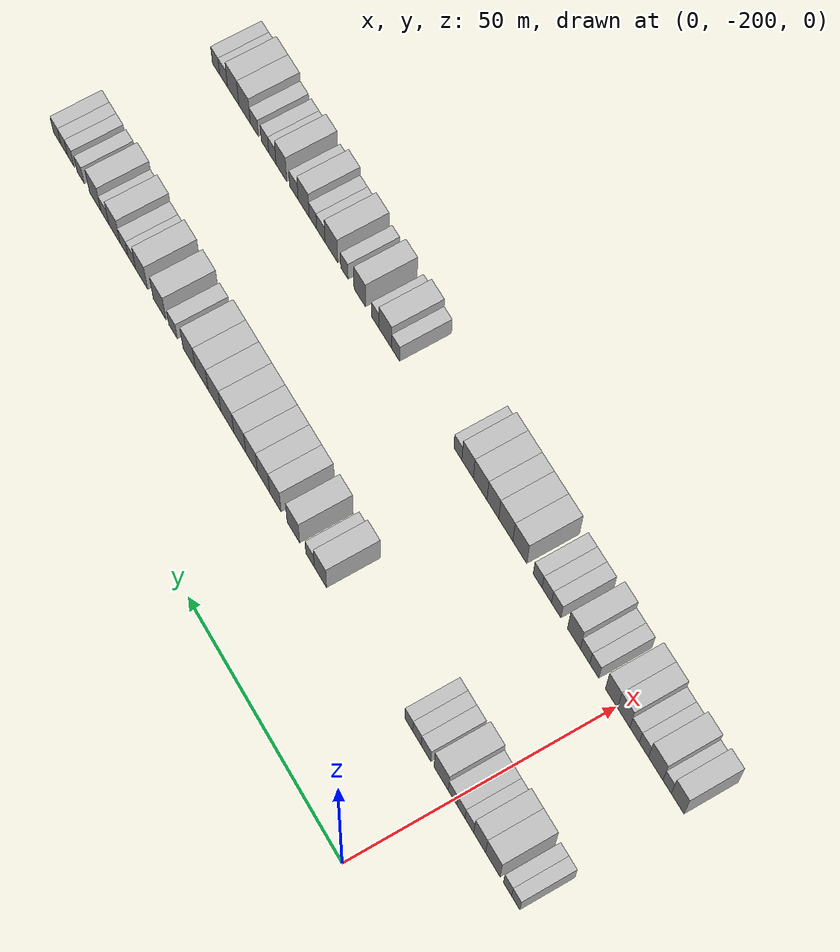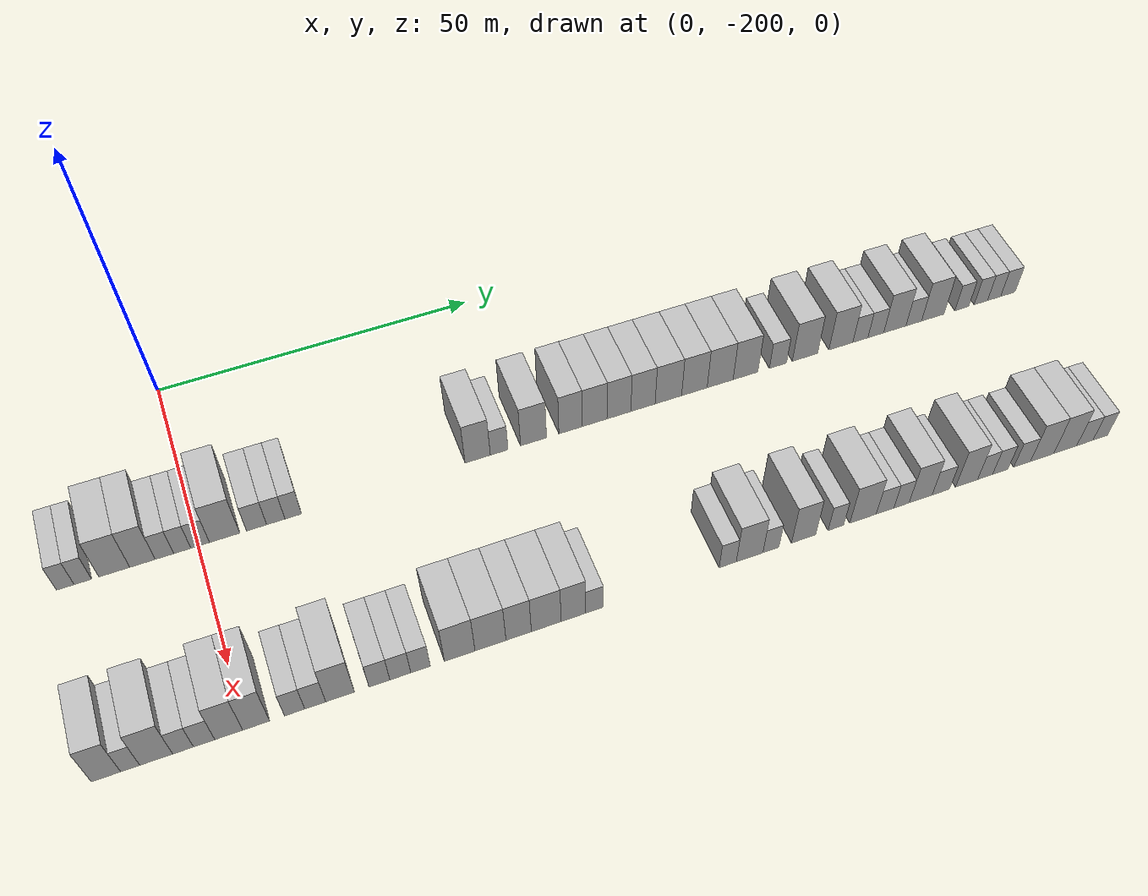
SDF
<sdf version="1.6">
 <world name="default">
  <model name="building_1">
   <static>1</static>
   <pose>25.0000 -218.7661 0 0.000000 0.000000 0.000000</pose>
   <link name="link">
    <pose>0 0 3.00 0 0 0</pose>
    <collision name="collision"><geometry><box><size>10.0000 2.4679 6.0000</size></box></geometry></collision>
    <visual name="visual">
     <cast_shadows>0</cast_shadows>
     <geometry><box><size>10.0000 2.4679 6.0000</size></box></geometry>
     <material>
      <script>
       <uri>model://HANNAS_wall/materials/scripts</uri>
       <uri>model://HANNAS_wall/materials/textures</uri>
       <name>vrc/HANNAS_wall</name>
      </script>
     </material>
    </visual>
   </link>
  </model>
  <model name="building_2">
   <static>1</static>
   <pose>25.0000 -216.3126 0 0.000000 0.000000 0.000000</pose>
   <link name="link">
    <pose>0 0 3.00 0 0 0</pose>
    <collision name="collision"><geometry><box><size>10.0000 2.4391 6.0000</size></box></geometry></collision>
    <visual name="visual">
     <cast_shadows>0</cast_shadows>
     <geometry><box><size>10.0000 2.4391 6.0000</size></box></geometry>
     <material>
      <script>
       <uri>model://HANNAS_wall/materials/scripts</uri>
       <uri>model://HANNAS_wall/materials/textures</uri>
       <name>vrc/HANNAS_wall</name>
      </script>
     </material>
    </visual>
   </link>
  </model>
  <model name="building_3">
   <static>1</static>
   <pose>25.0000 -211.9089 0 0.000000 0.000000 0.000000</pose>
   <link name="link">
    <pose>0 0 4.50 0 0 0</pose>
    <collision name="collision"><geometry><box><size>10.0000 4.3683 9.0000</size></box></geometry></collision>
    <visual name="visual">
     <cast_shadows>0</cast_shadows>
     <geometry><box><size>10.0000 4.3683 9.0000</size></box></geometry>
     <material>
      <script>
       <uri>model://HANNAS_wall/materials/scripts</uri>
       <uri>model://HANNAS_wall/materials/textures</uri>
       <name>vrc/HANNAS_wall</name>
      </script>
     </material>
    </visual>
   </link>
  </model>
  <model name="building_4">
   <static>1</static>
   <pose>25.0000 -207.9164 0 0.000000 0.000000 0.000000</pose>
   <link name="link">
    <pose>0 0 4.50 0 0 0</pose>
    <collision name="collision"><geometry><box><size>10.0000 3.6167 9.0000</size></box></geometry></collision>
    <visual name="visual">
     <cast_shadows>0</cast_shadows>
     <geometry><box><size>10.0000 3.6167 9.0000</size></box></geometry>
     <material>
      <script>
       <uri>model://HANNAS_wall/materials/scripts</uri>
       <uri>model://HANNAS_wall/materials/textures</uri>
       <name>vrc/HANNAS_wall</name>
      </script>
     </material>
    </visual>
   </link>
  </model>
  <model name="building_5">
   <static>1</static>
   <pose>25.0000 -204.7812 0 0.000000 0.000000 0.000000</pose>
   <link name="link">
    <pose>0 0 3.00 0 0 0</pose>
    <collision name="collision"><geometry><box><size>10.0000 2.6537 6.0000</size></box></geometry></collision>
    <visual name="visual">
     <cast_shadows>0</cast_shadows>
     <geometry><box><size>10.0000 2.6537 6.0000</size></box></geometry>
     <material>
      <script>
       <uri>model://HANNAS_wall/materials/scripts</uri>
       <uri>model://HANNAS_wall/materials/textures</uri>
       <name>vrc/HANNAS_wall</name>
      </script>
     </material>
    </visual>
   </link>
  </model>
  <model name="building_6">
   <static>1</static>
   <pose>25.0000 -202.2221 0 0.000000 0.000000 0.000000</pose>
   <link name="link">
    <pose>0 0 3.00 0 0 0</pose>
    <collision name="collision"><geometry><box><size>10.0000 2.4645 6.0000</size></box></geometry></collision>
    <visual name="visual">
     <cast_shadows>0</cast_shadows>
     <geometry><box><size>10.0000 2.4645 6.0000</size></box></geometry>
     <material>
      <script>
       <uri>model://HANNAS_wall/materials/scripts</uri>
       <uri>model://HANNAS_wall/materials/textures</uri>
       <name>vrc/HANNAS_wall</name>
      </script>
     </material>
    </visual>
   </link>
  </model>
  <model name="building_7">
   <static>1</static>
   <pose>25.0000 -199.6462 0 0.000000 0.000000 0.000000</pose>
   <link name="link">
    <pose>0 0 3.00 0 0 0</pose>
    <collision name="collision"><geometry><box><size>10.0000 2.6873 6.0000</size></box></geometry></collision>
    <visual name="visual">
     <cast_shadows>0</cast_shadows>
     <geometry><box><size>10.0000 2.6873 6.0000</size></box></geometry>
     <material>
      <script>
       <uri>model://HANNAS_wall/materials/scripts</uri>
       <uri>model://HANNAS_wall/materials/textures</uri>
       <name>vrc/HANNAS_wall</name>
      </script>
     </material>
    </visual>
   </link>
  </model>
  <model name="building_8">
   <static>1</static>
   <pose>25.0000 -196.1025 0 0.000000 0.000000 0.000000</pose>
   <link name="link">
    <pose>0 0 4.50 0 0 0</pose>
    <collision name="collision"><geometry><box><size>10.0000 4.4001 9.0000</size></box></geometry></collision>
    <visual name="visual">
     <cast_shadows>0</cast_shadows>
     <geometry><box><size>10.0000 4.4001 9.0000</size></box></geometry>
     <material>
      <script>
       <uri>model://HANNAS_wall/materials/scripts</uri>
       <uri>model://HANNAS_wall/materials/textures</uri>
       <name>vrc/HANNAS_wall</name>
      </script>
     </material>
    </visual>
   </link>
  </model>
  <model name="building_9">
   <static>1</static>
   <pose>25.0000 -191.4242 0 0.000000 0.000000 0.000000</pose>
   <link name="link">
    <pose>0 0 3.00 0 0 0</pose>
    <collision name="collision"><geometry><box><size>10.0000 2.9565 6.0000</size></box></geometry></collision>
    <visual name="visual">
     <cast_shadows>0</cast_shadows>
     <geometry><box><size>10.0000 2.9565 6.0000</size></box></geometry>
     <material>
      <script>
       <uri>model://HANNAS_wall/materials/scripts</uri>
       <uri>model://HANNAS_wall/materials/textures</uri>
       <name>vrc/HANNAS_wall</name>
      </script>
     </material>
    </visual>
   </link>
  </model>
  <model name="building_10">
   <static>1</static>
   <pose>25.0000 -188.5970 0 0.000000 0.000000 0.000000</pose>
   <link name="link">
    <pose>0 0 3.00 0 0 0</pose>
    <collision name="collision"><geometry><box><size>10.0000 2.6980 6.0000</size></box></geometry></collision>
    <visual name="visual">
     <cast_shadows>0</cast_shadows>
     <geometry><box><size>10.0000 2.6980 6.0000</size></box></geometry>
     <material>
      <script>
       <uri>model://HANNAS_wall/materials/scripts</uri>
       <uri>model://HANNAS_wall/materials/textures</uri>
       <name>vrc/HANNAS_wall</name>
      </script>
     </material>
    </visual>
   </link>
  </model>
  <model name="building_11">
   <static>1</static>
   <pose>25.0000 -186.0118 0 0.000000 0.000000 0.000000</pose>
   <link name="link">
    <pose>0 0 3.00 0 0 0</pose>
    <collision name="collision"><geometry><box><size>10.0000 2.4724 6.0000</size></box></geometry></collision>
    <visual name="visual">
     <cast_shadows>0</cast_shadows>
     <geometry><box><size>10.0000 2.4724 6.0000</size></box></geometry>
     <material>
      <script>
       <uri>model://HANNAS_wall/materials/scripts</uri>
       <uri>model://HANNAS_wall/materials/textures</uri>
       <name>vrc/HANNAS_wall</name>
      </script>
     </material>
    </visual>
   </link>
  </model>
  <model name="building_12">
   <static>1</static>
   <pose>25.0000 -157.7931 0 0.000000 0.000000 0.000000</pose>
   <link name="link">
    <pose>0 0 4.50 0 0 0</pose>
    <collision name="collision"><geometry><box><size>10.0000 3.9883 9.0000</size></box></geometry></collision>
    <visual name="visual">
     <cast_shadows>0</cast_shadows>
     <geometry><box><size>10.0000 3.9883 9.0000</size></box></geometry>
     <material>
      <script>
       <uri>model://HANNAS_wall/materials/scripts</uri>
       <uri>model://HANNAS_wall/materials/textures</uri>
       <name>vrc/HANNAS_wall</name>
      </script>
     </material>
    </visual>
   </link>
  </model>
  <model name="building_13">
   <static>1</static>
   <pose>25.0000 -154.4034 0 0.000000 0.000000 0.000000</pose>
   <link name="link">
    <pose>0 0 3.00 0 0 0</pose>
    <collision name="collision"><geometry><box><size>10.0000 2.7912 6.0000</size></box></geometry></collision>
    <visual name="visual">
     <cast_shadows>0</cast_shadows>
     <geometry><box><size>10.0000 2.7912 6.0000</size></box></geometry>
     <material>
      <script>
       <uri>model://HANNAS_wall/materials/scripts</uri>
       <uri>model://HANNAS_wall/materials/textures</uri>
       <name>vrc/HANNAS_wall</name>
      </script>
     </material>
    </visual>
   </link>
  </model>
  <model name="building_14">
   <static>1</static>
   <pose>25.0000 -148.9291 0 0.000000 0.000000 0.000000</pose>
   <link name="link">
    <pose>0 0 4.50 0 0 0</pose>
    <collision name="collision"><geometry><box><size>10.0000 4.1573 9.0000</size></box></geometry></collision>
    <visual name="visual">
     <cast_shadows>0</cast_shadows>
     <geometry><box><size>10.0000 4.1573 9.0000</size></box></geometry>
     <material>
      <script>
       <uri>model://HANNAS_wall/materials/scripts</uri>
       <uri>model://HANNAS_wall/materials/textures</uri>
       <name>vrc/HANNAS_wall</name>
      </script>
     </material>
    </visual>
   </link>
  </model>
  <model name="building_15">
   <static>1</static>
   <pose>25.0000 -142.9591 0 0.000000 0.000000 0.000000</pose>
   <link name="link">
    <pose>0 0 4.50 0 0 0</pose>
    <collision name="collision"><geometry><box><size>10.0000 3.7828 9.0000</size></box></geometry></collision>
    <visual name="visual">
     <cast_shadows>0</cast_shadows>
     <geometry><box><size>10.0000 3.7828 9.0000</size></box></geometry>
     <material>
      <script>
       <uri>model://HANNAS_wall/materials/scripts</uri>
       <uri>model://HANNAS_wall/materials/textures</uri>
       <name>vrc/HANNAS_wall</name>
      </script>
     </material>
    </visual>
   </link>
  </model>
  <model name="building_16">
   <static>1</static>
   <pose>25.0000 -139.0517 0 0.000000 0.000000 0.000000</pose>
   <link name="link">
    <pose>0 0 4.50 0 0 0</pose>
    <collision name="collision"><geometry><box><size>10.0000 4.0319 9.0000</size></box></geometry></collision>
    <visual name="visual">
     <cast_shadows>0</cast_shadows>
     <geometry><box><size>10.0000 4.0319 9.0000</size></box></geometry>
     <material>
      <script>
       <uri>model://HANNAS_wall/materials/scripts</uri>
       <uri>model://HANNAS_wall/materials/textures</uri>
       <name>vrc/HANNAS_wall</name>
      </script>
     </material>
    </visual>
   </link>
  </model>
  <model name="building_17">
   <static>1</static>
   <pose>25.0000 -135.0709 0 0.000000 0.000000 0.000000</pose>
   <link name="link">
    <pose>0 0 4.50 0 0 0</pose>
    <collision name="collision"><geometry><box><size>10.0000 3.9298 9.0000</size></box></geometry></collision>
    <visual name="visual">
     <cast_shadows>0</cast_shadows>
     <geometry><box><size>10.0000 3.9298 9.0000</size></box></geometry>
     <material>
      <script>
       <uri>model://HANNAS_wall/materials/scripts</uri>
       <uri>model://HANNAS_wall/materials/textures</uri>
       <name>vrc/HANNAS_wall</name>
      </script>
     </material>
    </visual>
   </link>
  </model>
  <model name="building_18">
   <static>1</static>
   <pose>25.0000 -131.0898 0 0.000000 0.000000 0.000000</pose>
   <link name="link">
    <pose>0 0 4.50 0 0 0</pose>
    <collision name="collision"><geometry><box><size>10.0000 4.0324 9.0000</size></box></geometry></collision>
    <visual name="visual">
     <cast_shadows>0</cast_shadows>
     <geometry><box><size>10.0000 4.0324 9.0000</size></box></geometry>
     <material>
      <script>
       <uri>model://HANNAS_wall/materials/scripts</uri>
       <uri>model://HANNAS_wall/materials/textures</uri>
       <name>vrc/HANNAS_wall</name>
      </script>
     </material>
    </visual>
   </link>
  </model>
  <model name="building_19">
   <static>1</static>
   <pose>25.0000 -126.8528 0 0.000000 0.000000 0.000000</pose>
   <link name="link">
    <pose>0 0 4.50 0 0 0</pose>
    <collision name="collision"><geometry><box><size>10.0000 4.4417 9.0000</size></box></geometry></collision>
    <visual name="visual">
     <cast_shadows>0</cast_shadows>
     <geometry><box><size>10.0000 4.4417 9.0000</size></box></geometry>
     <material>
      <script>
       <uri>model://HANNAS_wall/materials/scripts</uri>
       <uri>model://HANNAS_wall/materials/textures</uri>
       <name>vrc/HANNAS_wall</name>
      </script>
     </material>
    </visual>
   </link>
  </model>
  <model name="building_20">
   <static>1</static>
   <pose>25.0000 -122.4812 0 0.000000 0.000000 0.000000</pose>
   <link name="link">
    <pose>0 0 4.50 0 0 0</pose>
    <collision name="collision"><geometry><box><size>10.0000 4.3014 9.0000</size></box></geometry></collision>
    <visual name="visual">
     <cast_shadows>0</cast_shadows>
     <geometry><box><size>10.0000 4.3014 9.0000</size></box></geometry>
     <material>
      <script>
       <uri>model://HANNAS_wall/materials/scripts</uri>
       <uri>model://HANNAS_wall/materials/textures</uri>
       <name>vrc/HANNAS_wall</name>
      </script>
     </material>
    </visual>
   </link>
  </model>
  <model name="building_21">
   <static>1</static>
   <pose>25.0000 -118.1228 0 0.000000 0.000000 0.000000</pose>
   <link name="link">
    <pose>0 0 4.50 0 0 0</pose>
    <collision name="collision"><geometry><box><size>10.0000 4.4153 9.0000</size></box></geometry></collision>
    <visual name="visual">
     <cast_shadows>0</cast_shadows>
     <geometry><box><size>10.0000 4.4153 9.0000</size></box></geometry>
     <material>
      <script>
       <uri>model://HANNAS_wall/materials/scripts</uri>
       <uri>model://HANNAS_wall/materials/textures</uri>
       <name>vrc/HANNAS_wall</name>
      </script>
     </material>
    </visual>
   </link>
  </model>
  <model name="building_22">
   <static>1</static>
   <pose>25.0000 -113.7899 0 0.000000 0.000000 0.000000</pose>
   <link name="link">
    <pose>0 0 4.50 0 0 0</pose>
    <collision name="collision"><geometry><box><size>10.0000 4.2507 9.0000</size></box></geometry></collision>
    <visual name="visual">
     <cast_shadows>0</cast_shadows>
     <geometry><box><size>10.0000 4.2507 9.0000</size></box></geometry>
     <material>
      <script>
       <uri>model://HANNAS_wall/materials/scripts</uri>
       <uri>model://HANNAS_wall/materials/textures</uri>
       <name>vrc/HANNAS_wall</name>
      </script>
     </material>
    </visual>
   </link>
  </model>
  <model name="building_23">
   <static>1</static>
   <pose>25.0000 -108.1817 0 0.000000 0.000000 0.000000</pose>
   <link name="link">
    <pose>0 0 3.00 0 0 0</pose>
    <collision name="collision"><geometry><box><size>10.0000 2.9656 6.0000</size></box></geometry></collision>
    <visual name="visual">
     <cast_shadows>0</cast_shadows>
     <geometry><box><size>10.0000 2.9656 6.0000</size></box></geometry>
     <material>
      <script>
       <uri>model://HANNAS_wall/materials/scripts</uri>
       <uri>model://HANNAS_wall/materials/textures</uri>
       <name>vrc/HANNAS_wall</name>
      </script>
     </material>
    </visual>
   </link>
  </model>
  <model name="building_24">
   <static>1</static>
   <pose>25.0000 -103.4862 0 0.000000 0.000000 0.000000</pose>
   <link name="link">
    <pose>0 0 4.50 0 0 0</pose>
    <collision name="collision"><geometry><box><size>10.0000 4.4254 9.0000</size></box></geometry></collision>
    <visual name="visual">
     <cast_shadows>0</cast_shadows>
     <geometry><box><size>10.0000 4.4254 9.0000</size></box></geometry>
     <material>
      <script>
       <uri>model://HANNAS_wall/materials/scripts</uri>
       <uri>model://HANNAS_wall/materials/textures</uri>
       <name>vrc/HANNAS_wall</name>
      </script>
     </material>
    </visual>
   </link>
  </model>
  <model name="building_25">
   <static>1</static>
   <pose>25.0000 -97.1496 0 0.000000 0.000000 0.000000</pose>
   <link name="link">
    <pose>0 0 4.50 0 0 0</pose>
    <collision name="collision"><geometry><box><size>10.0000 4.2478 9.0000</size></box></geometry></collision>
    <visual name="visual">
     <cast_shadows>0</cast_shadows>
     <geometry><box><size>10.0000 4.2478 9.0000</size></box></geometry>
     <material>
      <script>
       <uri>model://HANNAS_wall/materials/scripts</uri>
       <uri>model://HANNAS_wall/materials/textures</uri>
       <name>vrc/HANNAS_wall</name>
      </script>
     </material>
    </visual>
   </link>
  </model>
  <model name="building_26">
   <static>1</static>
   <pose>25.0000 -93.6836 0 0.000000 0.000000 0.000000</pose>
   <link name="link">
    <pose>0 0 3.00 0 0 0</pose>
    <collision name="collision"><geometry><box><size>10.0000 2.6841 6.0000</size></box></geometry></collision>
    <visual name="visual">
     <cast_shadows>0</cast_shadows>
     <geometry><box><size>10.0000 2.6841 6.0000</size></box></geometry>
     <material>
      <script>
       <uri>model://HANNAS_wall/materials/scripts</uri>
       <uri>model://HANNAS_wall/materials/textures</uri>
       <name>vrc/HANNAS_wall</name>
      </script>
     </material>
    </visual>
   </link>
  </model>
  <model name="building_27">
   <static>1</static>
   <pose>25.0000 -90.9342 0 0.000000 0.000000 0.000000</pose>
   <link name="link">
    <pose>0 0 3.00 0 0 0</pose>
    <collision name="collision"><geometry><box><size>10.0000 2.8148 6.0000</size></box></geometry></collision>
    <visual name="visual">
     <cast_shadows>0</cast_shadows>
     <geometry><box><size>10.0000 2.8148 6.0000</size></box></geometry>
     <material>
      <script>
       <uri>model://HANNAS_wall/materials/scripts</uri>
       <uri>model://HANNAS_wall/materials/textures</uri>
       <name>vrc/HANNAS_wall</name>
      </script>
     </material>
    </visual>
   </link>
  </model>
  <model name="building_28">
   <static>1</static>
   <pose>25.0000 -87.5180 0 0.000000 0.000000 0.000000</pose>
   <link name="link">
    <pose>0 0 4.50 0 0 0</pose>
    <collision name="collision"><geometry><box><size>10.0000 4.0176 9.0000</size></box></geometry></collision>
    <visual name="visual">
     <cast_shadows>0</cast_shadows>
     <geometry><box><size>10.0000 4.0176 9.0000</size></box></geometry>
     <material>
      <script>
       <uri>model://HANNAS_wall/materials/scripts</uri>
       <uri>model://HANNAS_wall/materials/textures</uri>
       <name>vrc/HANNAS_wall</name>
      </script>
     </material>
    </visual>
   </link>
  </model>
  <model name="building_29">
   <static>1</static>
   <pose>25.0000 -84.0877 0 0.000000 0.000000 0.000000</pose>
   <link name="link">
    <pose>0 0 3.00 0 0 0</pose>
    <collision name="collision"><geometry><box><size>10.0000 2.8431 6.0000</size></box></geometry></collision>
    <visual name="visual">
     <cast_shadows>0</cast_shadows>
     <geometry><box><size>10.0000 2.8431 6.0000</size></box></geometry>
     <material>
      <script>
       <uri>model://HANNAS_wall/materials/scripts</uri>
       <uri>model://HANNAS_wall/materials/textures</uri>
       <name>vrc/HANNAS_wall</name>
      </script>
     </material>
    </visual>
   </link>
  </model>
  <model name="building_30">
   <static>1</static>
   <pose>25.0000 -80.6205 0 0.000000 0.000000 0.000000</pose>
   <link name="link">
    <pose>0 0 4.50 0 0 0</pose>
    <collision name="collision"><geometry><box><size>10.0000 4.0912 9.0000</size></box></geometry></collision>
    <visual name="visual">
     <cast_shadows>0</cast_shadows>
     <geometry><box><size>10.0000 4.0912 9.0000</size></box></geometry>
     <material>
      <script>
       <uri>model://HANNAS_wall/materials/scripts</uri>
       <uri>model://HANNAS_wall/materials/textures</uri>
       <name>vrc/HANNAS_wall</name>
      </script>
     </material>
    </visual>
   </link>
  </model>
  <model name="building_31">
   <static>1</static>
   <pose>25.0000 -75.2933 0 0.000000 0.000000 0.000000</pose>
   <link name="link">
    <pose>0 0 3.00 0 0 0</pose>
    <collision name="collision"><geometry><box><size>10.0000 2.5630 6.0000</size></box></geometry></collision>
    <visual name="visual">
     <cast_shadows>0</cast_shadows>
     <geometry><box><size>10.0000 2.5630 6.0000</size></box></geometry>
     <material>
      <script>
       <uri>model://HANNAS_wall/materials/scripts</uri>
       <uri>model://HANNAS_wall/materials/textures</uri>
       <name>vrc/HANNAS_wall</name>
      </script>
     </material>
    </visual>
   </link>
  </model>
  <model name="building_32">
   <static>1</static>
   <pose>25.0000 -71.7716 0 0.000000 0.000000 0.000000</pose>
   <link name="link">
    <pose>0 0 3.00 0 0 0</pose>
    <collision name="collision"><geometry><box><size>10.0000 2.4804 6.0000</size></box></geometry></collision>
    <visual name="visual">
     <cast_shadows>0</cast_shadows>
     <geometry><box><size>10.0000 2.4804 6.0000</size></box></geometry>
     <material>
      <script>
       <uri>model://HANNAS_wall/materials/scripts</uri>
       <uri>model://HANNAS_wall/materials/textures</uri>
       <name>vrc/HANNAS_wall</name>
      </script>
     </material>
    </visual>
   </link>
  </model>
  <model name="building_33">
   <static>1</static>
   <pose>25.0000 -69.3060 0 0.000000 0.000000 0.000000</pose>
   <link name="link">
    <pose>0 0 3.00 0 0 0</pose>
    <collision name="collision"><geometry><box><size>10.0000 2.4508 6.0000</size></box></geometry></collision>
    <visual name="visual">
     <cast_shadows>0</cast_shadows>
     <geometry><box><size>10.0000 2.4508 6.0000</size></box></geometry>
     <material>
      <script>
       <uri>model://HANNAS_wall/materials/scripts</uri>
       <uri>model://HANNAS_wall/materials/textures</uri>
       <name>vrc/HANNAS_wall</name>
      </script>
     </material>
    </visual>
   </link>
  </model>
  <model name="building_34">
   <static>1</static>
   <pose>25.0000 -66.7263 0 0.000000 0.000000 0.000000</pose>
   <link name="link">
    <pose>0 0 3.00 0 0 0</pose>
    <collision name="collision"><geometry><box><size>10.0000 2.7085 6.0000</size></box></geometry></collision>
    <visual name="visual">
     <cast_shadows>0</cast_shadows>
     <geometry><box><size>10.0000 2.7085 6.0000</size></box></geometry>
     <material>
      <script>
       <uri>model://HANNAS_wall/materials/scripts</uri>
       <uri>model://HANNAS_wall/materials/textures</uri>
       <name>vrc/HANNAS_wall</name>
      </script>
     </material>
    </visual>
   </link>
  </model>
  <model name="building_103">
   <static>1</static>
   <pose>55.0000 -218.1154 0 0.000000 0.000000 0.000000</pose>
   <link name="link">
    <pose>0 0 4.50 0 0 0</pose>
    <collision name="collision"><geometry><box><size>10.0000 3.7692 9.0000</size></box></geometry></collision>
    <visual name="visual">
     <cast_shadows>0</cast_shadows>
     <geometry><box><size>10.0000 3.7692 9.0000</size></box></geometry>
     <material>
      <script>
       <uri>model://HANNAS_wall/materials/scripts</uri>
       <uri>model://HANNAS_wall/materials/textures</uri>
       <name>vrc/HANNAS_wall</name>
      </script>
     </material>
    </visual>
   </link>
  </model>
  <model name="building_104">
   <static>1</static>
   <pose>55.0000 -215.0028 0 0.000000 0.000000 0.000000</pose>
   <link name="link">
    <pose>0 0 3.00 0 0 0</pose>
    <collision name="collision"><geometry><box><size>10.0000 2.4561 6.0000</size></box></geometry></collision>
    <visual name="visual">
     <cast_shadows>0</cast_shadows>
     <geometry><box><size>10.0000 2.4561 6.0000</size></box></geometry>
     <material>
      <script>
       <uri>model://HANNAS_wall/materials/scripts</uri>
       <uri>model://HANNAS_wall/materials/textures</uri>
       <name>vrc/HANNAS_wall</name>
      </script>
     </material>
    </visual>
   </link>
  </model>
  <model name="building_105">
   <static>1</static>
   <pose>55.0000 -211.6357 0 0.000000 0.000000 0.000000</pose>
   <link name="link">
    <pose>0 0 4.50 0 0 0</pose>
    <collision name="collision"><geometry><box><size>10.0000 4.2781 9.0000</size></box></geometry></collision>
    <visual name="visual">
     <cast_shadows>0</cast_shadows>
     <geometry><box><size>10.0000 4.2781 9.0000</size></box></geometry>
     <material>
      <script>
       <uri>model://HANNAS_wall/materials/scripts</uri>
       <uri>model://HANNAS_wall/materials/textures</uri>
       <name>vrc/HANNAS_wall</name>
      </script>
     </material>
    </visual>
   </link>
  </model>
  <model name="building_106">
   <static>1</static>
   <pose>55.0000 -208.1292 0 0.000000 0.000000 0.000000</pose>
   <link name="link">
    <pose>0 0 3.00 0 0 0</pose>
    <collision name="collision"><geometry><box><size>10.0000 2.7350 6.0000</size></box></geometry></collision>
    <visual name="visual">
     <cast_shadows>0</cast_shadows>
     <geometry><box><size>10.0000 2.7350 6.0000</size></box></geometry>
     <material>
      <script>
       <uri>model://HANNAS_wall/materials/scripts</uri>
       <uri>model://HANNAS_wall/materials/textures</uri>
       <name>vrc/HANNAS_wall</name>
      </script>
     </material>
    </visual>
   </link>
  </model>
  <model name="building_107">
   <static>1</static>
   <pose>55.0000 -205.3541 0 0.000000 0.000000 0.000000</pose>
   <link name="link">
    <pose>0 0 3.00 0 0 0</pose>
    <collision name="collision"><geometry><box><size>10.0000 2.8151 6.0000</size></box></geometry></collision>
    <visual name="visual">
     <cast_shadows>0</cast_shadows>
     <geometry><box><size>10.0000 2.8151 6.0000</size></box></geometry>
     <material>
      <script>
       <uri>model://HANNAS_wall/materials/scripts</uri>
       <uri>model://HANNAS_wall/materials/textures</uri>
       <name>vrc/HANNAS_wall</name>
      </script>
     </material>
    </visual>
   </link>
  </model>
  <model name="building_108">
   <static>1</static>
   <pose>55.0000 -202.0923 0 0.000000 0.000000 0.000000</pose>
   <link name="link">
    <pose>0 0 4.50 0 0 0</pose>
    <collision name="collision"><geometry><box><size>10.0000 3.7086 9.0000</size></box></geometry></collision>
    <visual name="visual">
     <cast_shadows>0</cast_shadows>
     <geometry><box><size>10.0000 3.7086 9.0000</size></box></geometry>
     <material>
      <script>
       <uri>model://HANNAS_wall/materials/scripts</uri>
       <uri>model://HANNAS_wall/materials/textures</uri>
       <name>vrc/HANNAS_wall</name>
      </script>
     </material>
    </visual>
   </link>
  </model>
  <model name="building_109">
   <static>1</static>
   <pose>55.0000 -198.4303 0 0.000000 0.000000 0.000000</pose>
   <link name="link">
    <pose>0 0 4.50 0 0 0</pose>
    <collision name="collision"><geometry><box><size>10.0000 3.6152 9.0000</size></box></geometry></collision>
    <visual name="visual">
     <cast_shadows>0</cast_shadows>
     <geometry><box><size>10.0000 3.6152 9.0000</size></box></geometry>
     <material>
      <script>
       <uri>model://HANNAS_wall/materials/scripts</uri>
       <uri>model://HANNAS_wall/materials/textures</uri>
       <name>vrc/HANNAS_wall</name>
      </script>
     </material>
    </visual>
   </link>
  </model>
  <model name="building_110">
   <static>1</static>
   <pose>55.0000 -193.2518 0 0.000000 0.000000 0.000000</pose>
   <link name="link">
    <pose>0 0 3.00 0 0 0</pose>
    <collision name="collision"><geometry><box><size>10.0000 2.7418 6.0000</size></box></geometry></collision>
    <visual name="visual">
     <cast_shadows>0</cast_shadows>
     <geometry><box><size>10.0000 2.7418 6.0000</size></box></geometry>
     <material>
      <script>
       <uri>model://HANNAS_wall/materials/scripts</uri>
       <uri>model://HANNAS_wall/materials/textures</uri>
       <name>vrc/HANNAS_wall</name>
      </script>
     </material>
    </visual>
   </link>
  </model>
  <model name="building_111">
   <static>1</static>
   <pose>55.0000 -190.4499 0 0.000000 0.000000 0.000000</pose>
   <link name="link">
    <pose>0 0 3.00 0 0 0</pose>
    <collision name="collision"><geometry><box><size>10.0000 2.8620 6.0000</size></box></geometry></collision>
    <visual name="visual">
     <cast_shadows>0</cast_shadows>
     <geometry><box><size>10.0000 2.8620 6.0000</size></box></geometry>
     <material>
      <script>
       <uri>model://HANNAS_wall/materials/scripts</uri>
       <uri>model://HANNAS_wall/materials/textures</uri>
       <name>vrc/HANNAS_wall</name>
      </script>
     </material>
    </visual>
   </link>
  </model>
  <model name="building_112">
   <static>1</static>
   <pose>55.0000 -187.0399 0 0.000000 0.000000 0.000000</pose>
   <link name="link">
    <pose>0 0 4.50 0 0 0</pose>
    <collision name="collision"><geometry><box><size>10.0000 3.9580 9.0000</size></box></geometry></collision>
    <visual name="visual">
     <cast_shadows>0</cast_shadows>
     <geometry><box><size>10.0000 3.9580 9.0000</size></box></geometry>
     <material>
      <script>
       <uri>model://HANNAS_wall/materials/scripts</uri>
       <uri>model://HANNAS_wall/materials/textures</uri>
       <name>vrc/HANNAS_wall</name>
      </script>
     </material>
    </visual>
   </link>
  </model>
  <model name="building_113">
   <static>1</static>
   <pose>55.0000 -181.6062 0 0.000000 0.000000 0.000000</pose>
   <link name="link">
    <pose>0 0 3.00 0 0 0</pose>
    <collision name="collision"><geometry><box><size>10.0000 2.9096 6.0000</size></box></geometry></collision>
    <visual name="visual">
     <cast_shadows>0</cast_shadows>
     <geometry><box><size>10.0000 2.9096 6.0000</size></box></geometry>
     <material>
      <script>
       <uri>model://HANNAS_wall/materials/scripts</uri>
       <uri>model://HANNAS_wall/materials/textures</uri>
       <name>vrc/HANNAS_wall</name>
      </script>
     </material>
    </visual>
   </link>
  </model>
  <model name="building_114">
   <static>1</static>
   <pose>55.0000 -178.6885 0 0.000000 0.000000 0.000000</pose>
   <link name="link">
    <pose>0 0 3.00 0 0 0</pose>
    <collision name="collision"><geometry><box><size>10.0000 2.9256 6.0000</size></box></geometry></collision>
    <visual name="visual">
     <cast_shadows>0</cast_shadows>
     <geometry><box><size>10.0000 2.9256 6.0000</size></box></geometry>
     <material>
      <script>
       <uri>model://HANNAS_wall/materials/scripts</uri>
       <uri>model://HANNAS_wall/materials/textures</uri>
       <name>vrc/HANNAS_wall</name>
      </script>
     </material>
    </visual>
   </link>
  </model>
  <model name="building_115">
   <static>1</static>
   <pose>55.0000 -175.8442 0 0.000000 0.000000 0.000000</pose>
   <link name="link">
    <pose>0 0 3.00 0 0 0</pose>
    <collision name="collision"><geometry><box><size>10.0000 2.7631 6.0000</size></box></geometry></collision>
    <visual name="visual">
     <cast_shadows>0</cast_shadows>
     <geometry><box><size>10.0000 2.7631 6.0000</size></box></geometry>
     <material>
      <script>
       <uri>model://HANNAS_wall/materials/scripts</uri>
       <uri>model://HANNAS_wall/materials/textures</uri>
       <name>vrc/HANNAS_wall</name>
      </script>
     </material>
    </visual>
   </link>
  </model>
  <model name="building_116">
   <static>1</static>
   <pose>55.0000 -170.2777 0 0.000000 0.000000 0.000000</pose>
   <link name="link">
    <pose>0 0 4.50 0 0 0</pose>
    <collision name="collision"><geometry><box><size>10.0000 4.3698 9.0000</size></box></geometry></collision>
    <visual name="visual">
     <cast_shadows>0</cast_shadows>
     <geometry><box><size>10.0000 4.3698 9.0000</size></box></geometry>
     <material>
      <script>
       <uri>model://HANNAS_wall/materials/scripts</uri>
       <uri>model://HANNAS_wall/materials/textures</uri>
       <name>vrc/HANNAS_wall</name>
      </script>
     </material>
    </visual>
   </link>
  </model>
  <model name="building_117">
   <static>1</static>
   <pose>55.0000 -165.8651 0 0.000000 0.000000 0.000000</pose>
   <link name="link">
    <pose>0 0 4.50 0 0 0</pose>
    <collision name="collision"><geometry><box><size>10.0000 4.4553 9.0000</size></box></geometry></collision>
    <visual name="visual">
     <cast_shadows>0</cast_shadows>
     <geometry><box><size>10.0000 4.4553 9.0000</size></box></geometry>
     <material>
      <script>
       <uri>model://HANNAS_wall/materials/scripts</uri>
       <uri>model://HANNAS_wall/materials/textures</uri>
       <name>vrc/HANNAS_wall</name>
      </script>
     </material>
    </visual>
   </link>
  </model>
  <model name="building_118">
   <static>1</static>
   <pose>55.0000 -161.7903 0 0.000000 0.000000 0.000000</pose>
   <link name="link">
    <pose>0 0 4.50 0 0 0</pose>
    <collision name="collision"><geometry><box><size>10.0000 3.6943 9.0000</size></box></geometry></collision>
    <visual name="visual">
     <cast_shadows>0</cast_shadows>
     <geometry><box><size>10.0000 3.6943 9.0000</size></box></geometry>
     <material>
      <script>
       <uri>model://HANNAS_wall/materials/scripts</uri>
       <uri>model://HANNAS_wall/materials/textures</uri>
       <name>vrc/HANNAS_wall</name>
      </script>
     </material>
    </visual>
   </link>
  </model>
  <model name="building_119">
   <static>1</static>
   <pose>55.0000 -157.7652 0 0.000000 0.000000 0.000000</pose>
   <link name="link">
    <pose>0 0 4.50 0 0 0</pose>
    <collision name="collision"><geometry><box><size>10.0000 4.3559 9.0000</size></box></geometry></collision>
    <visual name="visual">
     <cast_shadows>0</cast_shadows>
     <geometry><box><size>10.0000 4.3559 9.0000</size></box></geometry>
     <material>
      <script>
       <uri>model://HANNAS_wall/materials/scripts</uri>
       <uri>model://HANNAS_wall/materials/textures</uri>
       <name>vrc/HANNAS_wall</name>
      </script>
     </material>
    </visual>
   </link>
  </model>
  <model name="building_120">
   <static>1</static>
   <pose>55.0000 -153.7625 0 0.000000 0.000000 0.000000</pose>
   <link name="link">
    <pose>0 0 4.50 0 0 0</pose>
    <collision name="collision"><geometry><box><size>10.0000 3.6496 9.0000</size></box></geometry></collision>
    <visual name="visual">
     <cast_shadows>0</cast_shadows>
     <geometry><box><size>10.0000 3.6496 9.0000</size></box></geometry>
     <material>
      <script>
       <uri>model://HANNAS_wall/materials/scripts</uri>
       <uri>model://HANNAS_wall/materials/textures</uri>
       <name>vrc/HANNAS_wall</name>
      </script>
     </material>
    </visual>
   </link>
  </model>
  <model name="building_121">
   <static>1</static>
   <pose>55.0000 -150.6446 0 0.000000 0.000000 0.000000</pose>
   <link name="link">
    <pose>0 0 3.00 0 0 0</pose>
    <collision name="collision"><geometry><box><size>10.0000 2.5862 6.0000</size></box></geometry></collision>
    <visual name="visual">
     <cast_shadows>0</cast_shadows>
     <geometry><box><size>10.0000 2.5862 6.0000</size></box></geometry>
     <material>
      <script>
       <uri>model://HANNAS_wall/materials/scripts</uri>
       <uri>model://HANNAS_wall/materials/textures</uri>
       <name>vrc/HANNAS_wall</name>
      </script>
     </material>
    </visual>
   </link>
  </model>
  <model name="building_122">
   <static>1</static>
   <pose>55.0000 -130.3611 0 0.000000 0.000000 0.000000</pose>
   <link name="link">
    <pose>0 0 3.00 0 0 0</pose>
    <collision name="collision"><geometry><box><size>10.0000 2.6603 6.0000</size></box></geometry></collision>
    <visual name="visual">
     <cast_shadows>0</cast_shadows>
     <geometry><box><size>10.0000 2.6603 6.0000</size></box></geometry>
     <material>
      <script>
       <uri>model://HANNAS_wall/materials/scripts</uri>
       <uri>model://HANNAS_wall/materials/textures</uri>
       <name>vrc/HANNAS_wall</name>
      </script>
     </material>
    </visual>
   </link>
  </model>
  <model name="building_123">
   <static>1</static>
   <pose>55.0000 -126.9482 0 0.000000 0.000000 0.000000</pose>
   <link name="link">
    <pose>0 0 4.50 0 0 0</pose>
    <collision name="collision"><geometry><box><size>10.0000 4.1655 9.0000</size></box></geometry></collision>
    <visual name="visual">
     <cast_shadows>0</cast_shadows>
     <geometry><box><size>10.0000 4.1655 9.0000</size></box></geometry>
     <material>
      <script>
       <uri>model://HANNAS_wall/materials/scripts</uri>
       <uri>model://HANNAS_wall/materials/textures</uri>
       <name>vrc/HANNAS_wall</name>
      </script>
     </material>
    </visual>
   </link>
  </model>
  <model name="building_124">
   <static>1</static>
   <pose>55.0000 -123.5980 0 0.000000 0.000000 0.000000</pose>
   <link name="link">
    <pose>0 0 3.00 0 0 0</pose>
    <collision name="collision"><geometry><box><size>10.0000 2.5348 6.0000</size></box></geometry></collision>
    <visual name="visual">
     <cast_shadows>0</cast_shadows>
     <geometry><box><size>10.0000 2.5348 6.0000</size></box></geometry>
     <material>
      <script>
       <uri>model://HANNAS_wall/materials/scripts</uri>
       <uri>model://HANNAS_wall/materials/textures</uri>
       <name>vrc/HANNAS_wall</name>
      </script>
     </material>
    </visual>
   </link>
  </model>
  <model name="building_125">
   <static>1</static>
   <pose>55.0000 -118.4107 0 0.000000 0.000000 0.000000</pose>
   <link name="link">
    <pose>0 0 4.50 0 0 0</pose>
    <collision name="collision"><geometry><box><size>10.0000 3.8397 9.0000</size></box></geometry></collision>
    <visual name="visual">
     <cast_shadows>0</cast_shadows>
     <geometry><box><size>10.0000 3.8397 9.0000</size></box></geometry>
     <material>
      <script>
       <uri>model://HANNAS_wall/materials/scripts</uri>
       <uri>model://HANNAS_wall/materials/textures</uri>
       <name>vrc/HANNAS_wall</name>
      </script>
     </material>
    </visual>
   </link>
  </model>
  <model name="building_126">
   <static>1</static>
   <pose>55.0000 -113.2372 0 0.000000 0.000000 0.000000</pose>
   <link name="link">
    <pose>0 0 3.00 0 0 0</pose>
    <collision name="collision"><geometry><box><size>10.0000 2.5073 6.0000</size></box></geometry></collision>
    <visual name="visual">
     <cast_shadows>0</cast_shadows>
     <geometry><box><size>10.0000 2.5073 6.0000</size></box></geometry>
     <material>
      <script>
       <uri>model://HANNAS_wall/materials/scripts</uri>
       <uri>model://HANNAS_wall/materials/textures</uri>
       <name>vrc/HANNAS_wall</name>
      </script>
     </material>
    </visual>
   </link>
  </model>
  <model name="building_127">
   <static>1</static>
   <pose>55.0000 -108.8363 0 0.000000 0.000000 0.000000</pose>
   <link name="link">
    <pose>0 0 4.50 0 0 0</pose>
    <collision name="collision"><geometry><box><size>10.0000 4.2945 9.0000</size></box></geometry></collision>
    <visual name="visual">
     <cast_shadows>0</cast_shadows>
     <geometry><box><size>10.0000 4.2945 9.0000</size></box></geometry>
     <material>
      <script>
       <uri>model://HANNAS_wall/materials/scripts</uri>
       <uri>model://HANNAS_wall/materials/textures</uri>
       <name>vrc/HANNAS_wall</name>
      </script>
     </material>
    </visual>
   </link>
  </model>
  <model name="building_128">
   <static>1</static>
   <pose>55.0000 -105.2444 0 0.000000 0.000000 0.000000</pose>
   <link name="link">
    <pose>0 0 3.00 0 0 0</pose>
    <collision name="collision"><geometry><box><size>10.0000 2.8894 6.0000</size></box></geometry></collision>
    <visual name="visual">
     <cast_shadows>0</cast_shadows>
     <geometry><box><size>10.0000 2.8894 6.0000</size></box></geometry>
     <material>
      <script>
       <uri>model://HANNAS_wall/materials/scripts</uri>
       <uri>model://HANNAS_wall/materials/textures</uri>
       <name>vrc/HANNAS_wall</name>
      </script>
     </material>
    </visual>
   </link>
  </model>
  <model name="building_129">
   <static>1</static>
   <pose>55.0000 -102.5487 0 0.000000 0.000000 0.000000</pose>
   <link name="link">
    <pose>0 0 3.00 0 0 0</pose>
    <collision name="collision"><geometry><box><size>10.0000 2.5020 6.0000</size></box></geometry></collision>
    <visual name="visual">
     <cast_shadows>0</cast_shadows>
     <geometry><box><size>10.0000 2.5020 6.0000</size></box></geometry>
     <material>
      <script>
       <uri>model://HANNAS_wall/materials/scripts</uri>
       <uri>model://HANNAS_wall/materials/textures</uri>
       <name>vrc/HANNAS_wall</name>
      </script>
     </material>
    </visual>
   </link>
  </model>
  <model name="building_130">
   <static>1</static>
   <pose>55.0000 -99.3823 0 0.000000 0.000000 0.000000</pose>
   <link name="link">
    <pose>0 0 4.50 0 0 0</pose>
    <collision name="collision"><geometry><box><size>10.0000 3.8308 9.0000</size></box></geometry></collision>
    <visual name="visual">
     <cast_shadows>0</cast_shadows>
     <geometry><box><size>10.0000 3.8308 9.0000</size></box></geometry>
     <material>
      <script>
       <uri>model://HANNAS_wall/materials/scripts</uri>
       <uri>model://HANNAS_wall/materials/textures</uri>
       <name>vrc/HANNAS_wall</name>
      </script>
     </material>
    </visual>
   </link>
  </model>
  <model name="building_131">
   <static>1</static>
   <pose>55.0000 -96.0085 0 0.000000 0.000000 0.000000</pose>
   <link name="link">
    <pose>0 0 3.00 0 0 0</pose>
    <collision name="collision"><geometry><box><size>10.0000 2.9169 6.0000</size></box></geometry></collision>
    <visual name="visual">
     <cast_shadows>0</cast_shadows>
     <geometry><box><size>10.0000 2.9169 6.0000</size></box></geometry>
     <material>
      <script>
       <uri>model://HANNAS_wall/materials/scripts</uri>
       <uri>model://HANNAS_wall/materials/textures</uri>
       <name>vrc/HANNAS_wall</name>
      </script>
     </material>
    </visual>
   </link>
  </model>
  <model name="building_132">
   <static>1</static>
   <pose>55.0000 -91.6907 0 0.000000 0.000000 0.000000</pose>
   <link name="link">
    <pose>0 0 4.50 0 0 0</pose>
    <collision name="collision"><geometry><box><size>10.0000 3.7187 9.0000</size></box></geometry></collision>
    <visual name="visual">
     <cast_shadows>0</cast_shadows>
     <geometry><box><size>10.0000 3.7187 9.0000</size></box></geometry>
     <material>
      <script>
       <uri>model://HANNAS_wall/materials/scripts</uri>
       <uri>model://HANNAS_wall/materials/textures</uri>
       <name>vrc/HANNAS_wall</name>
      </script>
     </material>
    </visual>
   </link>
  </model>
  <model name="building_133">
   <static>1</static>
   <pose>55.0000 -88.5588 0 0.000000 0.000000 0.000000</pose>
   <link name="link">
    <pose>0 0 3.00 0 0 0</pose>
    <collision name="collision"><geometry><box><size>10.0000 2.5451 6.0000</size></box></geometry></collision>
    <visual name="visual">
     <cast_shadows>0</cast_shadows>
     <geometry><box><size>10.0000 2.5451 6.0000</size></box></geometry>
     <material>
      <script>
       <uri>model://HANNAS_wall/materials/scripts</uri>
       <uri>model://HANNAS_wall/materials/textures</uri>
       <name>vrc/HANNAS_wall</name>
      </script>
     </material>
    </visual>
   </link>
  </model>
  <model name="building_134">
   <static>1</static>
   <pose>55.0000 -85.9795 0 0.000000 0.000000 0.000000</pose>
   <link name="link">
    <pose>0 0 3.00 0 0 0</pose>
    <collision name="collision"><geometry><box><size>10.0000 2.6135 6.0000</size></box></geometry></collision>
    <visual name="visual">
     <cast_shadows>0</cast_shadows>
     <geometry><box><size>10.0000 2.6135 6.0000</size></box></geometry>
     <material>
      <script>
       <uri>model://HANNAS_wall/materials/scripts</uri>
       <uri>model://HANNAS_wall/materials/textures</uri>
       <name>vrc/HANNAS_wall</name>
      </script>
     </material>
    </visual>
   </link>
  </model>
  <model name="building_135">
   <static>1</static>
   <pose>55.0000 -82.2365 0 0.000000 0.000000 0.000000</pose>
   <link name="link">
    <pose>0 0 3.00 0 0 0</pose>
    <collision name="collision"><geometry><box><size>10.0000 2.8724 6.0000</size></box></geometry></collision>
    <visual name="visual">
     <cast_shadows>0</cast_shadows>
     <geometry><box><size>10.0000 2.8724 6.0000</size></box></geometry>
     <material>
      <script>
       <uri>model://HANNAS_wall/materials/scripts</uri>
       <uri>model://HANNAS_wall/materials/textures</uri>
       <name>vrc/HANNAS_wall</name>
      </script>
     </material>
    </visual>
   </link>
  </model>
  <model name="building_136">
   <static>1</static>
   <pose>55.0000 -78.7991 0 0.000000 0.000000 0.000000</pose>
   <link name="link">
    <pose>0 0 4.50 0 0 0</pose>
    <collision name="collision"><geometry><box><size>10.0000 4.0026 9.0000</size></box></geometry></collision>
    <visual name="visual">
     <cast_shadows>0</cast_shadows>
     <geometry><box><size>10.0000 4.0026 9.0000</size></box></geometry>
     <material>
      <script>
       <uri>model://HANNAS_wall/materials/scripts</uri>
       <uri>model://HANNAS_wall/materials/textures</uri>
       <name>vrc/HANNAS_wall</name>
      </script>
     </material>
    </visual>
   </link>
  </model>
  <model name="building_137">
   <static>1</static>
   <pose>55.0000 -74.7832 0 0.000000 0.000000 0.000000</pose>
   <link name="link">
    <pose>0 0 4.50 0 0 0</pose>
    <collision name="collision"><geometry><box><size>10.0000 4.0290 9.0000</size></box></geometry></collision>
    <visual name="visual">
     <cast_shadows>0</cast_shadows>
     <geometry><box><size>10.0000 4.0290 9.0000</size></box></geometry>
     <material>
      <script>
       <uri>model://HANNAS_wall/materials/scripts</uri>
       <uri>model://HANNAS_wall/materials/textures</uri>
       <name>vrc/HANNAS_wall</name>
      </script>
     </material>
    </visual>
   </link>
  </model>
  <model name="building_138">
   <static>1</static>
   <pose>55.0000 -71.3446 0 0.000000 0.000000 0.000000</pose>
   <link name="link">
    <pose>0 0 3.00 0 0 0</pose>
    <collision name="collision"><geometry><box><size>10.0000 2.8482 6.0000</size></box></geometry></collision>
    <visual name="visual">
     <cast_shadows>0</cast_shadows>
     <geometry><box><size>10.0000 2.8482 6.0000</size></box></geometry>
     <material>
      <script>
       <uri>model://HANNAS_wall/materials/scripts</uri>
       <uri>model://HANNAS_wall/materials/textures</uri>
       <name>vrc/HANNAS_wall</name>
      </script>
     </material>
    </visual>
   </link>
  </model>
  <model name="building_139">
   <static>1</static>
   <pose>55.0000 -68.6405 0 0.000000 0.000000 0.000000</pose>
   <link name="link">
    <pose>0 0 3.00 0 0 0</pose>
    <collision name="collision"><geometry><box><size>10.0000 2.5602 6.0000</size></box></geometry></collision>
    <visual name="visual">
     <cast_shadows>0</cast_shadows>
     <geometry><box><size>10.0000 2.5602 6.0000</size></box></geometry>
     <material>
      <script>
       <uri>model://HANNAS_wall/materials/scripts</uri>
       <uri>model://HANNAS_wall/materials/textures</uri>
       <name>vrc/HANNAS_wall</name>
      </script>
     </material>
    </visual>
   </link>
  </model>
 </world>
</sdf>
